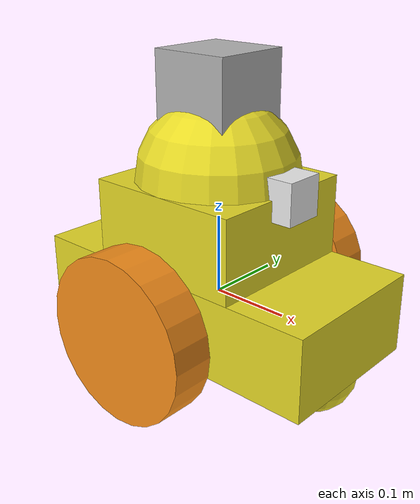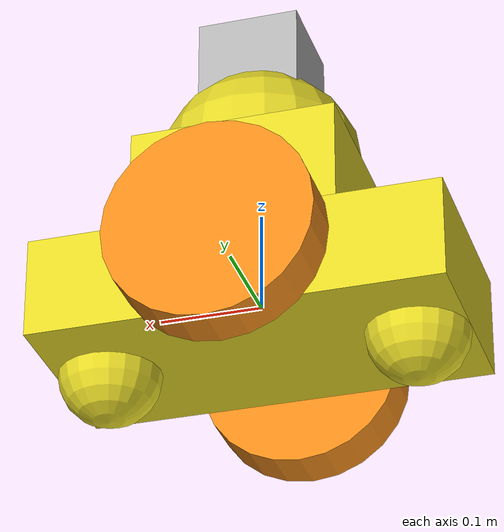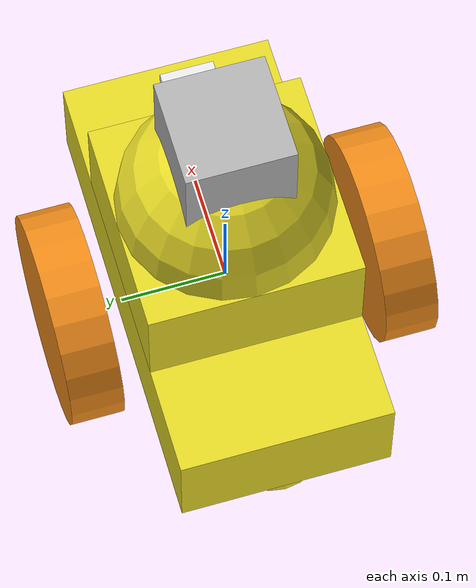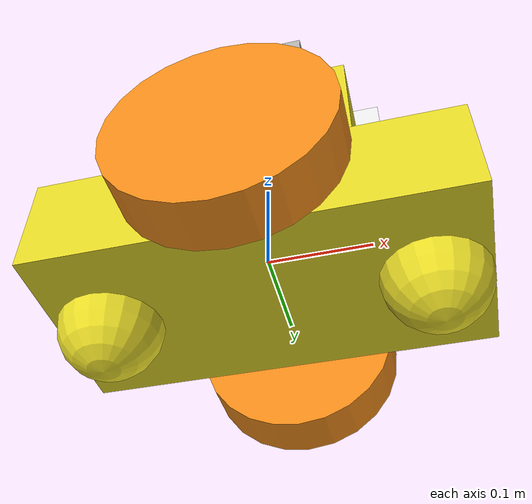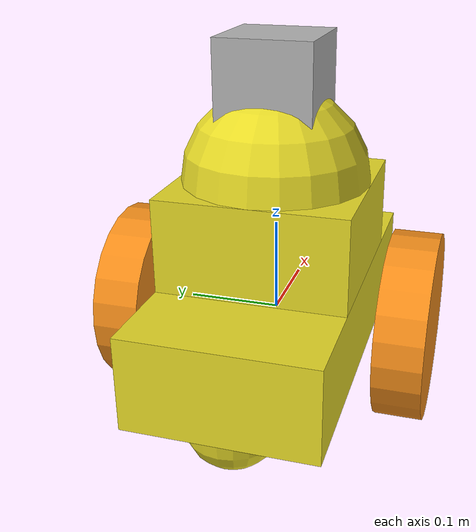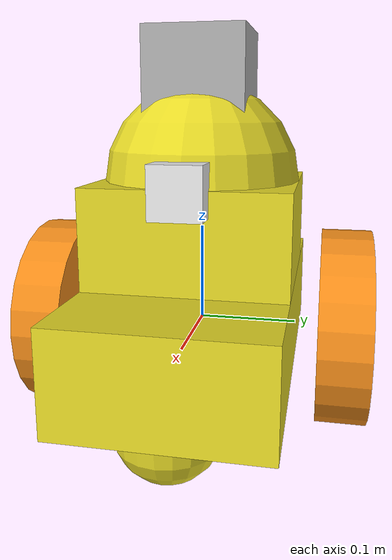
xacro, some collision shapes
<?xml version="1.0"?>
<robot name="my_robot" xmlns:xacro="http://www.ros.org/wiki/xacro">
	<xacro:include filename="$(find my_robot)/urdf/my_robot.gazebo" />
	<link name="robot_footprint">
	</link>
	<joint name="robot_footprint_joint" type="fixed">
		<origin xyz="0 0 0" rpy="0 0 0" />
		<parent link="robot_footprint" />
		<child link="chassis" />
	</joint>
	<link name="chassis">
		<pose>
			0 0 0.1 0 0 0
		</pose>
		<inertial>
			<mass value="15.0" />
			<origin xyz="0.0 0 0" rpy=" 0 0 0" />
			<inertia ixx="0.1" ixy="0" ixz="0" iyy="0.1" iyz="0" izz="0.1" />
		</inertial>
		<collision name="collision">
			<origin xyz="0 0 0" rpy=" 0 0 0" />
			<geometry>
				<box size=".4 .2 .1" />
			</geometry>
		</collision>
		<visual name="chassis_visual">
			<origin xyz="0 0 0" rpy=" 0 0 0" />
			<geometry>
				<box size=".4 .2 .1" />
			</geometry>
		</visual>
		<collision name="back_caster_collision">
			<origin xyz="-0.15 0 -0.05" rpy=" 0 0 0" />
			<geometry>
				<sphere radius="0.0499" />
			</geometry>
		</collision>
		<visual name="back_caster_visual">
			<origin xyz="-0.15 0 -0.05" rpy=" 0 0 0" />
		<geometry>
				<sphere radius="0.05" />
			</geometry>
		</visual>
		<collision name="front_caster_collision">
			<origin xyz="0.15 0 -0.05" rpy=" 0 0 0" />
			<geometry>
				<sphere radius="0.0499" />
			</geometry>
		</collision>
		<visual name="front_caster_visual">
			<origin xyz="0.15 0 -0.05" rpy=" 0 0 0" />
			<geometry>
				<sphere radius="0.05" />
			</geometry>
		</visual>
	</link>
	<joint type="fixed" name="chassis_body_joint">
		<origin xyz="0 0 0.1" rpy="0 0 0" />
		<parent link="chassis" />
		<child link="chassis_body" />
	</joint>
	<link name="chassis_body">
		<visual>
			<origin xyz="0 0 0" rpy="0 0 0" />
			<geometry>
				<box size="0.2 0.2 0.1" />
			</geometry>
		</visual>
		<collision>
			<origin xyz="0 0 0" rpy="0 0 0" />
			<geometry>
				<box size="0.2 0.2 0.1" />
			</geometry>
		</collision>
		<intertial>
			<mass value="5.0" />
			<origin xyz="0 0 0" rpy=" 0 0 0" />
			<inertia ixx="0.1" ixy="0" ixz="0" iyy="0.1" iyz="0" izz="0.1" />
		</intertial>
	</link>

	<joint type="fixed" name="chassis_roof_joint">
		<origin xyz="0 0 0.15" rpy="0 0 0" />
		<parent link="chassis" />
		<child link="chassis_roof" />
	</joint>
	<link name="chassis_roof">
		<visual>
			<origin xyz="0 0 0" rpy="0 0 0" />
			<geometry>
				<sphere radius="0.1" />
			</geometry>
		</visual>
		<collision>
			<origin xyz="0 0 0" rpy="0 0 0" />
			<geometry>
				<sphere radius="0.1" />
			</geometry>
		</collision>
		<inertial>
			<mass value="2.0" />
			<origin xyz="0 0 0" rpy=" 0 0 0" />
			<inertia ixx="0.1" ixy="0" ixz="0" iyy="0.1" iyz="0" izz="0.1" />
		</inertial>
	</link>

	<joint type="continuous" name="left_wheel_hinge">
		<origin xyz="0 0.15 0" rpy="0 0 0" />
		<parent link="chassis" />
		<child link="left_wheel" />
		<axis xyz="0 1 0" rpy="0 0 0" />
		<limit effort="10000" velocity="1000" />
		<dynamics damping="1.0" friction="1.0" />
	</joint>
	<link name="left_wheel">
		<visual name="left_wheel_visual">
			<origin xyz="0 0 0" rpy="0 1.5707 1.5707" />
			<geometry>
				<cylinder radius="0.1" length="0.05" />
			</geometry>
		</visual>
		<collision name="left_wheel_collision">
			<origin xyz="0 0 0" rpy="0 1.5707 1.5707" />
			<geometry>
				<cylinder radius="0.1" length="0.05" />
			</geometry>
		</collision>
		<inertial name="left_wheel_inertial">
			<mass value="5.0" />
			<origin xyz="0 0 0" rpy="0 1.5707 1.5707" />
			<inertia ixx="0.1" ixy="0" ixz="0" iyy="0.1" iyz="0" izz="0.1" />
		</inertial>
	</link>
	<joint type="continuous" name="right_wheel_hinge">
		<origin xyz="0 -0.15 0" rpy="0 0 0" />
		<parent link="chassis" />
		<child link="right_wheel" />
		<axis xyz="0 1 0" rpy="0 0 0" />
		<limit effort="10000" velocity="1000" />
		<dynamics damping="1.0" friction="1.0" />
	</joint>
	<link name="right_wheel">
		<visual name="right_wheel_visual">
			<origin xyz="0 0 0" rpy="0 1.5707 1.5707" />
			<geometry>
				<cylinder radius="0.1" length="0.05" />
			</geometry>
		</visual>
		<collision name="right_wheel_collision">
			<origin xyz="0 0 0" rpy="0 1.5707 1.5707" />
			<geometry>
				<cylinder radius="0.1" length="0.05" />
			</geometry>
		</collision>
		<inertial name="right_wheel_inertial">
			<mass value="5.0" />
			<origin xyz="0 0 0" rpy="0 1.5707 1.5707" />
			<inertia ixx="0.1" ixy="0" ixz="0" iyy="0.1" iyz="0" izz="0.1" />
		</inertial>
	</link>
	<joint type="fixed" name="camera_joint">
		<origin xyz="0.1 0 0.15" rpy="0 0 0" />
		<parent link="chassis" />
		<child link="camera" />
		<axis xyz="0 1 0" rpy="0 0 0" />
	</joint>
	<link name="camera">
		<visual name="camera_visual">
			<origin xyz="0 0 0" rpy="0 0 0" />
			<geometry>
				<box size="0.05 0.05 0.05" />
			</geometry>
		</visual>
		<collision name="camera_collision">
			<origin xyz="0 0 0" rpy="0 0 0" />
			<geometry>
				<box size="0.05 0.05 0.05" />
			</geometry>
		</collision>
		<inertial>
			<mass value="0.1" />
			<origin xyz="0 0 0" rpy="0 0 0" />
			<inertia ixx="1e-6" ixy="0" ixz="0" iyy="1e-6" iyz="0" izz="1e-6" />
		</inertial>
	</link>
	<joint type="fixed" name="hokuyo_joint">
		<origin xyz="0 0 0.25" rpy="0 0 0" />
		<parent link="chassis" />
		<child link="hokuyo" />
		<axis xyz="0 1 0" rpy="0 0 0" />
	</joint>
	<link name="hokuyo">
		<visual name="hokuyo_visual">
			<origin xyz="0 0 0" rpy="0 0 0" />
			<geometry>
				<mesh filename="package://my_robot/meshes/hokuyo.dae" />
			</geometry>
		</visual>
		<collision name="hokuyo_collision">
			<origin xyz="0 0 0" rpy="0 0 0" />
			<geometry>
				<box size="0.1 0.1 0.1" />
			</geometry>
		</collision>
		<inertial>
			<mass value="1e-5" />
			<origin xyz="0.2 0 0" rpy="0 0 0" />
			<inertia ixx="1e-6" ixy="0" ixz="0" iyy="1e-6" iyz="0" izz="1e-6" />
		</inertial>
	</link>
	<joint name="camera_optical_joint" type="fixed">
		<origin xyz="0 0 0" rpy="-1.5707 0 -1.5707"/>
		<parent link="camera"/>
		<child link="camera_link_optical"/>
	</joint>
	<link name="camera_link_optical">
	</link>
	<gazebo reference="left_wheel">
		<material>
			Gazebo/Orange
		</material>
	</gazebo>
	<gazebo reference="right_wheel">
		<material>
			Gazebo/Orange
		</material>
	</gazebo>
	<gazebo reference="camera">
		<material>
			Gazebo/White
		</material>
	</gazebo>
	<gazebo reference="chassis">
		<material>
			Gazebo/Yellow
		</material>
	</gazebo>
	<gazebo reference="chassis_body">
		<material>
			Gazebo/Yellow
		</material>
	</gazebo>
	<gazebo reference="chassis_roof">
		<material>
			Gazebo/Yellow
		</material>
	</gazebo>
</robot>
